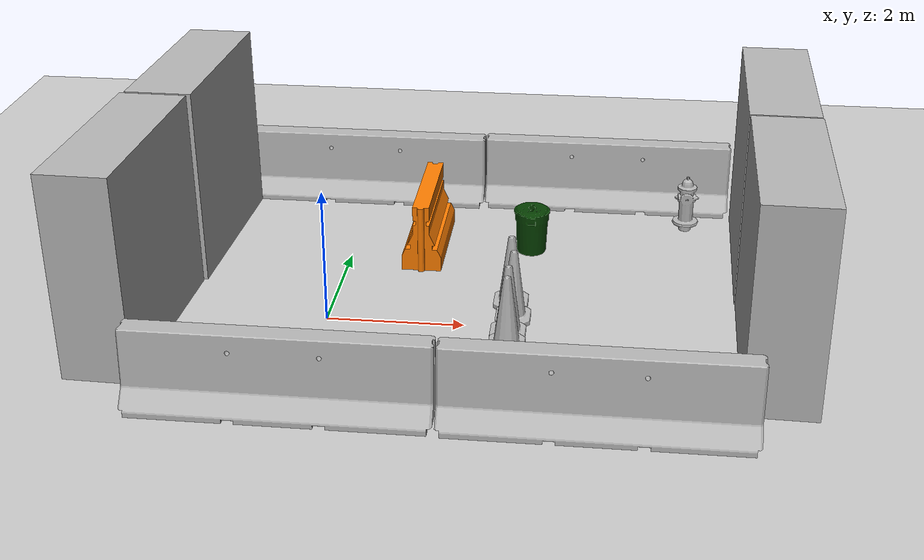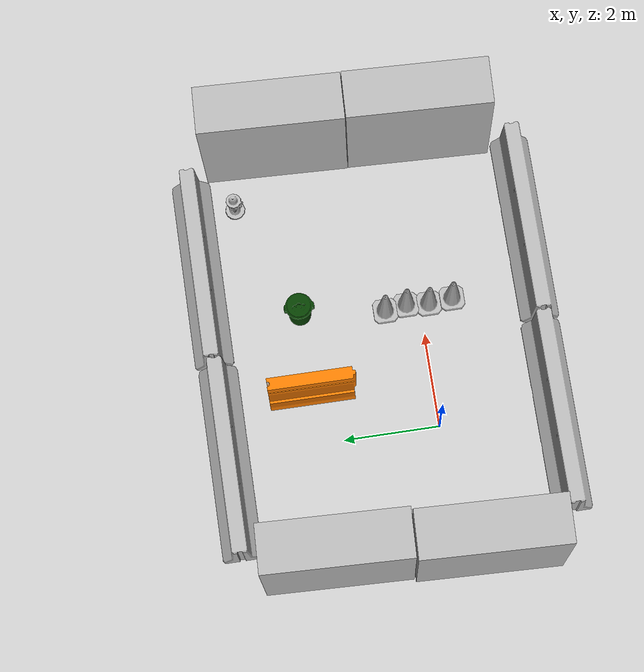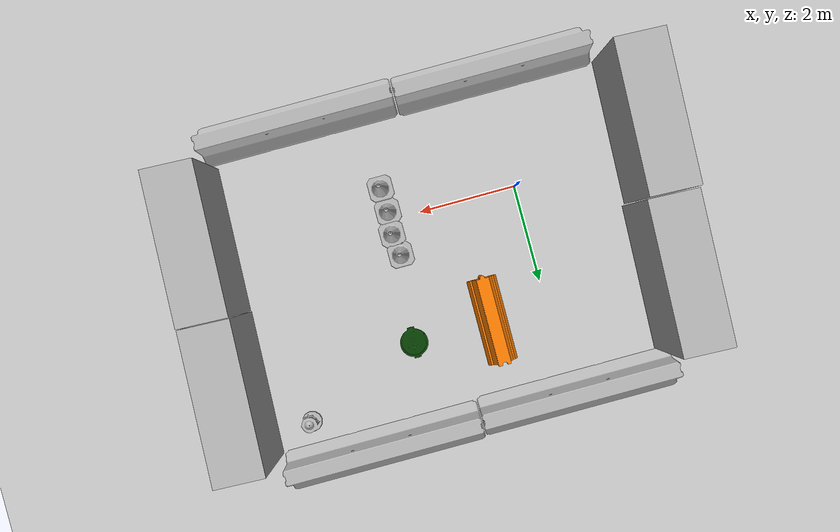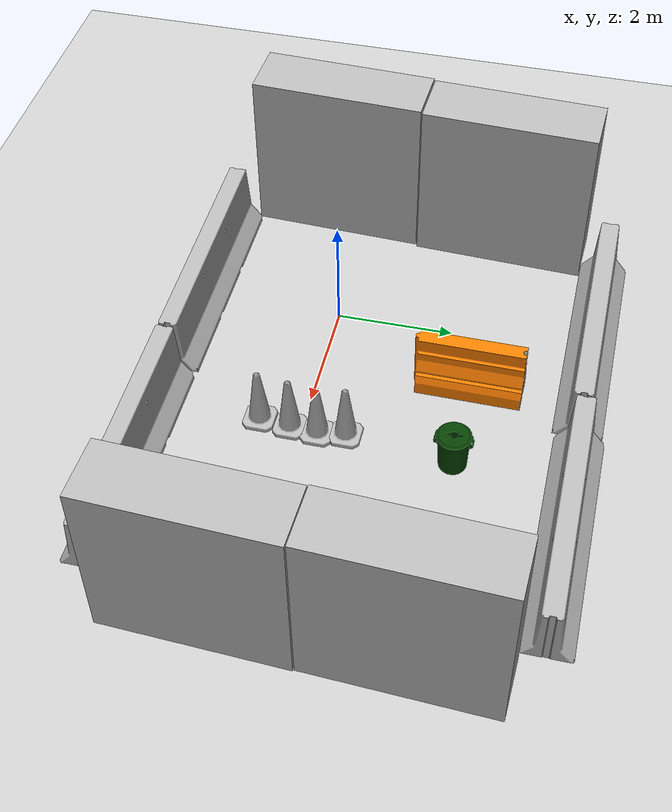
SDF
<sdf version="1.7">
 <world name="default">
  <light name="sun" type="directional">
   <pose>0 0 10 0 -0 0</pose>
   <diffuse>0.8 0.8 0.8 1</diffuse>
   <specular>0.2 0.2 0.2 1</specular>
   <attenuation>
    <range>1000</range>
    <constant>0.9</constant>
    <linear>0.01</linear>
    <quadratic>0.001</quadratic>
   </attenuation>
   <direction>-0.5 0.1 -0.9</direction>
   <spot><inner_angle>0</inner_angle><outer_angle>0</outer_angle><falloff>0</falloff></spot>
  </light>
  <model name="ground_plane">
   <static>1</static>
   <link name="link">
    <collision name="collision">
     <geometry><plane><normal>0 0 1</normal><size>100 100</size></plane></geometry>
     <surface><friction><ode><mu>100</mu><mu2>50</mu2></ode></friction></surface>
    </collision>
    <visual name="visual">
     <cast_shadows>0</cast_shadows>
     <geometry><plane><normal>0 0 1</normal><size>100 100</size></plane></geometry>
     <material>
      <script><uri>file://media/materials/scripts/gazebo.material</uri><name>Gazebo/Grey</name></script>
     </material>
    </visual>
   </link>
  </model>
  <gravity>0 0 -9.8</gravity>
  <magnetic_field>6e-06 2.3e-05 -4.2e-05</magnetic_field>
  <atmosphere type="adiabatic"/>
  <physics type="ode">
   <max_step_size>0.001</max_step_size>
   <real_time_factor>1</real_time_factor>
   <real_time_update_rate>1000</real_time_update_rate>
  </physics>
  <scene><ambient>0.4 0.4 0.4 1</ambient><background>0.7 0.7 0.7 1</background><shadows>1</shadows></scene>
  <audio><device>default</device></audio>
  <spherical_coordinates>
   <surface_model>EARTH_WGS84</surface_model>
   <latitude_deg>0</latitude_deg>
   <longitude_deg>0</longitude_deg>
   <elevation>0</elevation>
   <heading_deg>0</heading_deg>
  </spherical_coordinates>
  <model name="fire_hydrant">
   <static>1</static>
   <link name="link">
    <collision name="collision">
     <geometry><mesh><uri>model://fire_hydrant/meshes/fire_hydrant.dae</uri></mesh></geometry>
    </collision>
    <visual name="visual">
     <geometry><mesh><uri>model://fire_hydrant/meshes/fire_hydrant.dae</uri></mesh></geometry>
    </visual>
   </link>
   <pose>5.26251 3.563 -0 0 -0 0</pose>
  </model>
  <model name="first_2015_trash_can_0">
   <link name="link">
    <inertial>
     <pose>0 0 0.3683 0 -0 0</pose>
     <mass>4.83076</mass>
     <inertia>
      <ixx>0.281534</ixx>
      <ixy>0</ixy>
      <ixz>0</ixz>
      <iyy>0.281534</iyy>
      <iyz>0</iyz>
      <izz>0.126223</izz>
     </inertia>
    </inertial>
    <visual name="visual">
     <geometry><mesh><uri>model://first_2015_trash_can/meshes/trash_can.dae</uri></mesh></geometry>
    </visual>
    <collision name="collision">
     <geometry><mesh><uri>model://first_2015_trash_can/meshes/trash_can.dae</uri></mesh></geometry>
    </collision>
   </link>
   <pose>2.80626 2.52324 -8e-06 -4e-06 1.2e-05 -0.00118</pose>
  </model>
  <model name="Construction Cone">
   <link name="link">
    <collision name="collision">
     <geometry>
      <mesh><scale>10 10 10</scale><uri>model://construction_cone/meshes/construction_cone.dae</uri></mesh>
     </geometry>
    </collision>
    <visual name="visual">
     <geometry>
      <mesh><scale>10 10 10</scale><uri>model://construction_cone/meshes/construction_cone.dae</uri></mesh>
     </geometry>
    </visual>
    <inertial>
     <inertia><ixx>1</ixx><ixy>0</ixy><ixz>0</ixz><iyy>1</iyy><iyz>0</iyz><izz>1</izz></inertia>
     <mass>1</mass>
    </inertial>
   </link>
   <pose>2.68174 0.285564 1e-06 0 -1e-06 0</pose>
  </model>
  <model name="Construction Cone_clone">
   <link name="link">
    <collision name="collision">
     <geometry>
      <mesh><scale>10 10 10</scale><uri>model://construction_cone/meshes/construction_cone.dae</uri></mesh>
     </geometry>
    </collision>
    <visual name="visual">
     <geometry>
      <mesh><scale>10 10 10</scale><uri>model://construction_cone/meshes/construction_cone.dae</uri></mesh>
     </geometry>
    </visual>
    <inertial>
     <inertia><ixx>1</ixx><ixy>0</ixy><ixz>0</ixz><iyy>1</iyy><iyz>0</iyz><izz>1</izz></inertia>
     <mass>1</mass>
    </inertial>
   </link>
   <pose>2.66129 -0.678036 0.092671 0 -0 0</pose>
  </model>
  <model name="Construction Cone_clone_clone_clone_clone">
   <link name="link">
    <collision name="collision">
     <geometry>
      <mesh><scale>10 10 10</scale><uri>model://construction_cone/meshes/construction_cone.dae</uri></mesh>
     </geometry>
    </collision>
    <visual name="visual">
     <geometry>
      <mesh><scale>10 10 10</scale><uri>model://construction_cone/meshes/construction_cone.dae</uri></mesh>
     </geometry>
    </visual>
    <inertial>
     <inertia><ixx>1</ixx><ixy>0</ixy><ixz>0</ixz><iyy>1</iyy><iyz>0</iyz><izz>1</izz></inertia>
     <mass>1</mass>
    </inertial>
   </link>
   <pose>2.61726 0.74266 2e-06 0 -1e-06 0</pose>
  </model>
  <model name="jersey_barrier">
   <static>1</static>
   <link name="link">
    <visual name="visual">
     <geometry><mesh><uri>model://jersey_barrier/meshes/jersey_barrier.dae</uri></mesh></geometry>
    </visual>
    <collision name="upright">
     <pose>0 0 0.5715 0 -0 0</pose>
     <geometry><box><size>4.06542 0.3063 1.143</size></box></geometry>
    </collision>
    <collision name="base">
     <pose>0 0 0.032258 0 -0 0</pose>
     <geometry><box><size>4.06542 0.8107 0.064516</size></box></geometry>
    </collision>
    <collision name="base2">
     <pose>0 0 0.1 0 -0 0</pose>
     <geometry><box><size>4.06542 0.65 0.1</size></box></geometry>
    </collision>
    <collision name="base3">
     <pose>0 0 0.2 0 -0 0</pose>
     <geometry><box><size>4.06542 0.5 0.1</size></box></geometry>
    </collision>
    <collision name="left-angle">
     <pose>0 -0.224 0.2401 0.9 -0 0</pose>
     <geometry><box><size>4.06542 0.5 0.064516</size></box></geometry>
    </collision>
    <collision name="right-angle">
     <pose>0 0.224 0.2401 -0.9 0 0</pose>
     <geometry><box><size>4.06542 0.5 0.064516</size></box></geometry>
    </collision>
   </link>
   <pose>3.94594 4.43331 0 0 -0 0</pose>
  </model>
  <model name="brick_box_3x1x3_clone">
   <static>1</static>
   <link name="chassis">
    <pose>0 0 1.5 0 -0 0</pose>
    <collision name="collision"><geometry><box><size>3 1 3</size></box></geometry></collision>
    <visual name="visual">
     <geometry><mesh><uri>model://brick_box_3x1x3/meshes/simple_box.dae</uri><scale>3 1 3</scale></mesh></geometry>
     <material>
      <script>
       <uri>model://brick_box_3x1x3/materials/scripts</uri>
       <uri>model://brick_box_3x1x3/materials/textures</uri>
       <name>BrickBox/Diffuse</name>
      </script>
     </material>
    </visual>
   </link>
   <pose>6.45798 2.541 0 0.00892 -0.002359 -1.61075</pose>
  </model>
  <model name="jersey_barrier_clone">
   <static>1</static>
   <link name="link">
    <visual name="visual">
     <geometry><mesh><uri>model://jersey_barrier/meshes/jersey_barrier.dae</uri></mesh></geometry>
    </visual>
    <collision name="upright">
     <pose>0 0 0.5715 0 -0 0</pose>
     <geometry><box><size>4.06542 0.3063 1.143</size></box></geometry>
    </collision>
    <collision name="base">
     <pose>0 0 0.032258 0 -0 0</pose>
     <geometry><box><size>4.06542 0.8107 0.064516</size></box></geometry>
    </collision>
    <collision name="base2">
     <pose>0 0 0.1 0 -0 0</pose>
     <geometry><box><size>4.06542 0.65 0.1</size></box></geometry>
    </collision>
    <collision name="base3">
     <pose>0 0 0.2 0 -0 0</pose>
     <geometry><box><size>4.06542 0.5 0.1</size></box></geometry>
    </collision>
    <collision name="left-angle">
     <pose>0 -0.224 0.2401 0.9 -0 0</pose>
     <geometry><box><size>4.06542 0.5 0.064516</size></box></geometry>
    </collision>
    <collision name="right-angle">
     <pose>0 0.224 0.2401 -0.9 0 0</pose>
     <geometry><box><size>4.06542 0.5 0.064516</size></box></geometry>
    </collision>
   </link>
   <pose>-0.143985 4.38742 0 0 -0 0</pose>
  </model>
  <model name="brick_box_3x1x3_clone_clone">
   <static>1</static>
   <link name="chassis">
    <pose>0 0 1.5 0 -0 0</pose>
    <collision name="collision"><geometry><box><size>3 1 3</size></box></geometry></collision>
    <visual name="visual">
     <geometry><mesh><uri>model://brick_box_3x1x3/meshes/simple_box.dae</uri><scale>3 1 3</scale></mesh></geometry>
     <material>
      <script>
       <uri>model://brick_box_3x1x3/materials/scripts</uri>
       <uri>model://brick_box_3x1x3/materials/textures</uri>
       <name>BrickBox/Diffuse</name>
      </script>
     </material>
    </visual>
   </link>
   <pose>6.35143 -0.474261 0 0.00892 -0.002359 -1.61075</pose>
  </model>
  <model name="jersey_barrier_clone_clone">
   <static>1</static>
   <link name="link">
    <visual name="visual">
     <geometry><mesh><uri>model://jersey_barrier/meshes/jersey_barrier.dae</uri></mesh></geometry>
    </visual>
    <collision name="upright">
     <pose>0 0 0.5715 0 -0 0</pose>
     <geometry><box><size>4.06542 0.3063 1.143</size></box></geometry>
    </collision>
    <collision name="base">
     <pose>0 0 0.032258 0 -0 0</pose>
     <geometry><box><size>4.06542 0.8107 0.064516</size></box></geometry>
    </collision>
    <collision name="base2">
     <pose>0 0 0.1 0 -0 0</pose>
     <geometry><box><size>4.06542 0.65 0.1</size></box></geometry>
    </collision>
    <collision name="base3">
     <pose>0 0 0.2 0 -0 0</pose>
     <geometry><box><size>4.06542 0.5 0.1</size></box></geometry>
    </collision>
    <collision name="left-angle">
     <pose>0 -0.224 0.2401 0.9 -0 0</pose>
     <geometry><box><size>4.06542 0.5 0.064516</size></box></geometry>
    </collision>
    <collision name="right-angle">
     <pose>0 0.224 0.2401 -0.9 0 0</pose>
     <geometry><box><size>4.06542 0.5 0.064516</size></box></geometry>
    </collision>
   </link>
   <pose>3.95431 -2.43793 0 0 -0 0</pose>
  </model>
  <model name="jersey_barrier_clone_clone_clone">
   <static>1</static>
   <link name="link">
    <visual name="visual">
     <geometry><mesh><uri>model://jersey_barrier/meshes/jersey_barrier.dae</uri></mesh></geometry>
    </visual>
    <collision name="upright">
     <pose>0 0 0.5715 0 -0 0</pose>
     <geometry><box><size>4.06542 0.3063 1.143</size></box></geometry>
    </collision>
    <collision name="base">
     <pose>0 0 0.032258 0 -0 0</pose>
     <geometry><box><size>4.06542 0.8107 0.064516</size></box></geometry>
    </collision>
    <collision name="base2">
     <pose>0 0 0.1 0 -0 0</pose>
     <geometry><box><size>4.06542 0.65 0.1</size></box></geometry>
    </collision>
    <collision name="base3">
     <pose>0 0 0.2 0 -0 0</pose>
     <geometry><box><size>4.06542 0.5 0.1</size></box></geometry>
    </collision>
    <collision name="left-angle">
     <pose>0 -0.224 0.2401 0.9 -0 0</pose>
     <geometry><box><size>4.06542 0.5 0.064516</size></box></geometry>
    </collision>
    <collision name="right-angle">
     <pose>0 0.224 0.2401 -0.9 0 0</pose>
     <geometry><box><size>4.06542 0.5 0.064516</size></box></geometry>
    </collision>
   </link>
   <pose>-0.144272 -2.41773 0 0 -0 0</pose>
  </model>
  <model name="brick_box_3x1x3_clone_clone_clone">
   <static>1</static>
   <link name="chassis">
    <pose>0 0 1.5 0 -0 0</pose>
    <collision name="collision"><geometry><box><size>3 1 3</size></box></geometry></collision>
    <visual name="visual">
     <geometry><mesh><uri>model://brick_box_3x1x3/meshes/simple_box.dae</uri><scale>3 1 3</scale></mesh></geometry>
     <material>
      <script>
       <uri>model://brick_box_3x1x3/materials/scripts</uri>
       <uri>model://brick_box_3x1x3/materials/textures</uri>
       <name>BrickBox/Diffuse</name>
      </script>
     </material>
    </visual>
   </link>
   <pose>-2.6629 -0.53835 0 0.00892 -0.002359 -1.61075</pose>
  </model>
  <model name="brick_box_3x1x3_clone_clone_clone_clone">
   <static>1</static>
   <link name="chassis">
    <pose>0 0 1.5 0 -0 0</pose>
    <collision name="collision"><geometry><box><size>3 1 3</size></box></geometry></collision>
    <visual name="visual">
     <geometry><mesh><uri>model://brick_box_3x1x3/meshes/simple_box.dae</uri><scale>3 1 3</scale></mesh></geometry>
     <material>
      <script>
       <uri>model://brick_box_3x1x3/materials/scripts</uri>
       <uri>model://brick_box_3x1x3/materials/textures</uri>
       <name>BrickBox/Diffuse</name>
      </script>
     </material>
    </visual>
   </link>
   <pose>-2.48596 2.48809 0 0.00892 -0.002359 -1.61075</pose>
  </model>
  <model name="Construction Cone_clone_0">
   <link name="link">
    <collision name="collision">
     <geometry>
      <mesh><scale>10 10 10</scale><uri>model://construction_cone/meshes/construction_cone.dae</uri></mesh>
     </geometry>
    </collision>
    <visual name="visual">
     <geometry>
      <mesh><scale>10 10 10</scale><uri>model://construction_cone/meshes/construction_cone.dae</uri></mesh>
     </geometry>
    </visual>
    <inertial>
     <inertia><ixx>1</ixx><ixy>0</ixy><ixz>0</ixz><iyy>1</iyy><iyz>0</iyz><izz>1</izz></inertia>
     <mass>1</mass>
    </inertial>
   </link>
   <pose>2.64219 -0.184764 1e-06 0 -1e-06 0</pose>
  </model>
  <model name="drc_practice_organge_jersey_barrier">
   <static>1</static>
   <link name="link">
    <visual name="visual">
     <geometry>
      <mesh><uri>model://drc_practice_orange_jersey_barrier/meshes/jersey_barrier.dae</uri></mesh>
     </geometry>
    </visual>
    <collision name="collision">
     <geometry>
      <mesh><uri>model://drc_practice_orange_jersey_barrier/meshes/jersey_barrier.dae</uri></mesh>
     </geometry>
    </collision>
   </link>
   <pose>1.1596 2.51963 0 0 -0 0</pose>
  </model>
 </world>
</sdf>
